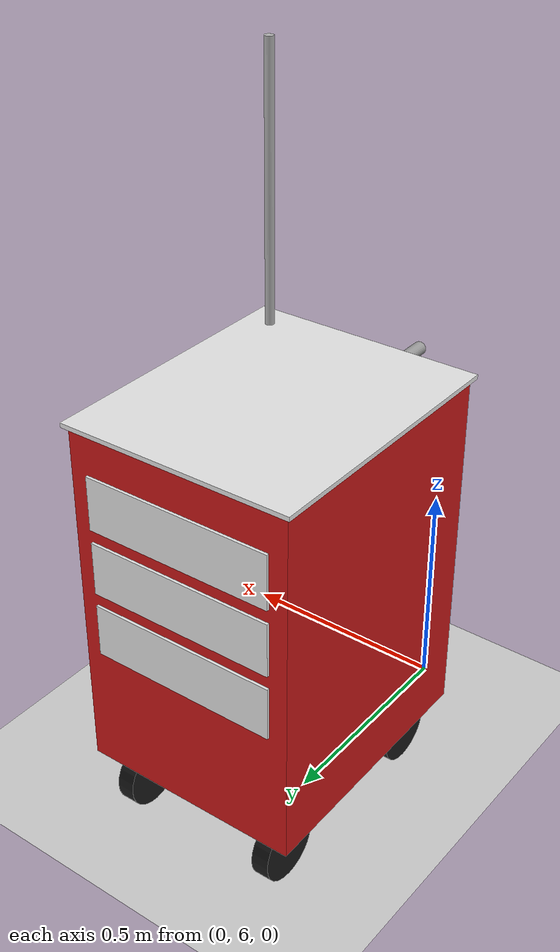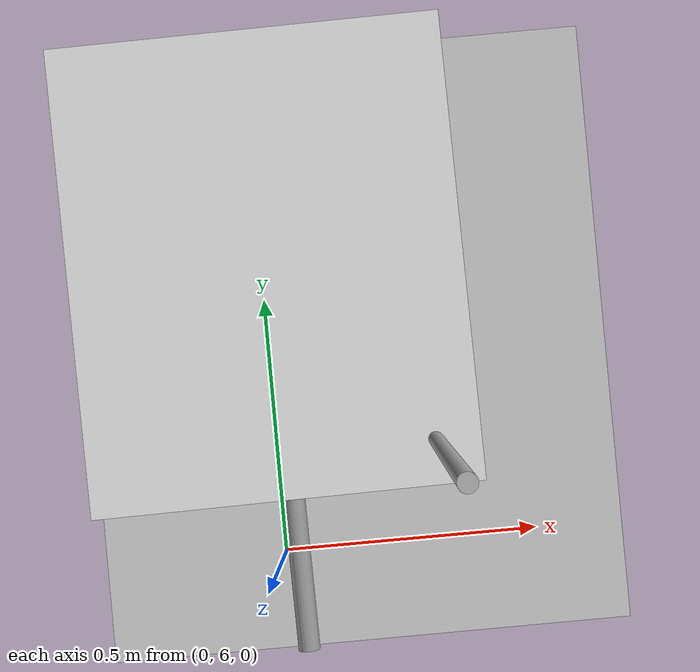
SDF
<sdf version="1.7">
 <world name="default">
  <model name="ground_plane">
   <static>1</static>
   <link name="link">
    <collision name="collision">
     <geometry><plane><normal>0 0 1</normal><size>100 100</size></plane></geometry>
     <surface><friction><ode><mu>100</mu><mu2>50</mu2></ode></friction></surface>
    </collision>
    <visual name="visual">
     <cast_shadows>0</cast_shadows>
     <geometry><plane><normal>0 0 1</normal><size>100 100</size></plane></geometry>
     <material>
      <script><uri>file://media/materials/scripts/gazebo.material</uri><name>Gazebo/Grey</name></script>
     </material>
    </visual>
   </link>
  </model>
  <model name="medical_cart">
   <static>0</static>
   <link name="chassis">
    <pose>0 0 0.55 0 -0 0</pose>
    <inertial>
     <mass>25</mass>
     <inertia><ixx>1.2</ixx><ixy>0</ixy><ixz>0</ixz><iyy>1.2</iyy><iyz>0</iyz><izz>0.8</izz></inertia>
    </inertial>
    <collision name="body_collision"><geometry><box><size>0.6 0.5 0.8</size></box></geometry></collision>
    <visual name="body_visual">
     <geometry><box><size>0.6 0.5 0.8</size></box></geometry>
     <material>
      <ambient>0.8 0.1 0.1 1</ambient>
      <diffuse>0.8 0.1 0.1 1</diffuse>
      <specular>0.5 0.5 0.5 1</specular>
     </material>
    </visual>
    <visual name="top_visual">
     <pose>0 0 0.405 0 -0 0</pose>
     <geometry><box><size>0.62 0.52 0.01</size></box></geometry>
     <material><ambient>0.9 0.9 0.9 1</ambient><diffuse>0.9 0.9 0.9 1</diffuse></material>
    </visual>
    <visual name="drawer_1">
     <pose>0.301 0 0.25 0 -0 0</pose>
     <geometry><box><size>0.01 0.42 0.12</size></box></geometry>
     <material><ambient>0.9 0.9 0.9 1</ambient><diffuse>0.9 0.9 0.9 1</diffuse></material>
    </visual>
    <visual name="drawer_2">
     <pose>0.301 0 0.1 0 -0 0</pose>
     <geometry><box><size>0.01 0.42 0.12</size></box></geometry>
     <material><ambient>0.9 0.9 0.9 1</ambient><diffuse>0.9 0.9 0.9 1</diffuse></material>
    </visual>
    <visual name="drawer_3">
     <pose>0.301 0 -0.05 0 -0 0</pose>
     <geometry><box><size>0.01 0.42 0.12</size></box></geometry>
     <material><ambient>0.9 0.9 0.9 1</ambient><diffuse>0.9 0.9 0.9 1</diffuse></material>
    </visual>
    <collision name="handle_collision">
     <pose>-0.33 0 0.3 0 1.5707 0</pose>
     <geometry><cylinder><radius>0.015</radius><length>0.4</length></cylinder></geometry>
    </collision>
    <visual name="handle_visual">
     <pose>-0.33 0 0.3 0 1.5707 0</pose>
     <geometry><cylinder><radius>0.015</radius><length>0.4</length></cylinder></geometry>
     <material><ambient>0.6 0.6 0.6 1</ambient><diffuse>0.6 0.6 0.6 1</diffuse></material>
    </visual>
    <collision name="iv_pole_collision">
     <pose>-0.25 -0.2 0.7 0 -0 0</pose>
     <geometry><cylinder><radius>0.01</radius><length>0.6</length></cylinder></geometry>
    </collision>
    <visual name="iv_pole_visual">
     <pose>-0.25 -0.2 0.7 0 -0 0</pose>
     <geometry><cylinder><radius>0.01</radius><length>0.6</length></cylinder></geometry>
     <material><ambient>0.7 0.7 0.7 1</ambient><diffuse>0.7 0.7 0.7 1</diffuse></material>
    </visual>
   </link>
   <link name="wheel_fl">
    <pose>0.22 0.18 0.075 -0 1.5707 1.5707</pose>
    <collision name="collision">
     <geometry><cylinder><radius>0.075</radius><length>0.04</length></cylinder></geometry>
     <surface><friction><ode><mu>1</mu><mu2>1</mu2></ode></friction></surface>
    </collision>
    <visual name="visual">
     <geometry><cylinder><radius>0.075</radius><length>0.04</length></cylinder></geometry>
     <material><ambient>0.1 0.1 0.1 1</ambient><diffuse>0.1 0.1 0.1 1</diffuse></material>
    </visual>
    <inertial>
     <inertia><ixx>1</ixx><ixy>0</ixy><ixz>0</ixz><iyy>1</iyy><iyz>0</iyz><izz>1</izz></inertia>
     <mass>1</mass>
    </inertial>
   </link>
   <link name="wheel_fr">
    <pose>0.22 -0.18 0.075 -0 1.5707 1.5707</pose>
    <collision name="collision">
     <geometry><cylinder><radius>0.075</radius><length>0.04</length></cylinder></geometry>
     <surface><friction><ode><mu>1</mu><mu2>1</mu2></ode></friction></surface>
    </collision>
    <visual name="visual">
     <geometry><cylinder><radius>0.075</radius><length>0.04</length></cylinder></geometry>
     <material><ambient>0.1 0.1 0.1 1</ambient><diffuse>0.1 0.1 0.1 1</diffuse></material>
    </visual>
    <inertial>
     <inertia><ixx>1</ixx><ixy>0</ixy><ixz>0</ixz><iyy>1</iyy><iyz>0</iyz><izz>1</izz></inertia>
     <mass>1</mass>
    </inertial>
   </link>
   <link name="wheel_bl">
    <pose>-0.22 0.18 0.075 -0 1.5707 1.5707</pose>
    <collision name="collision">
     <geometry><cylinder><radius>0.075</radius><length>0.04</length></cylinder></geometry>
     <surface><friction><ode><mu>1</mu><mu2>1</mu2></ode></friction></surface>
    </collision>
    <visual name="visual">
     <geometry><cylinder><radius>0.075</radius><length>0.04</length></cylinder></geometry>
     <material><ambient>0.1 0.1 0.1 1</ambient><diffuse>0.1 0.1 0.1 1</diffuse></material>
    </visual>
    <inertial>
     <inertia><ixx>1</ixx><ixy>0</ixy><ixz>0</ixz><iyy>1</iyy><iyz>0</iyz><izz>1</izz></inertia>
     <mass>1</mass>
    </inertial>
   </link>
   <link name="wheel_br">
    <pose>-0.22 -0.18 0.075 -0 1.5707 1.5707</pose>
    <collision name="collision">
     <geometry><cylinder><radius>0.075</radius><length>0.04</length></cylinder></geometry>
     <surface><friction><ode><mu>1</mu><mu2>1</mu2></ode></friction></surface>
    </collision>
    <visual name="visual">
     <geometry><cylinder><radius>0.075</radius><length>0.04</length></cylinder></geometry>
     <material><ambient>0.1 0.1 0.1 1</ambient><diffuse>0.1 0.1 0.1 1</diffuse></material>
    </visual>
    <inertial>
     <inertia><ixx>1</ixx><ixy>0</ixy><ixz>0</ixz><iyy>1</iyy><iyz>0</iyz><izz>1</izz></inertia>
     <mass>1</mass>
    </inertial>
   </link>
   <joint name="joint_fl" type="revolute">
    <parent>chassis</parent>
    <child>wheel_fl</child>
    <axis>
     <xyz>0 0 1</xyz>
     <limit><lower>-1e+16</lower><upper>1e+16</upper></limit>
     <dynamics><spring_reference>0</spring_reference><spring_stiffness>0</spring_stiffness></dynamics>
    </axis>
   </joint>
   <joint name="joint_fr" type="revolute">
    <parent>chassis</parent>
    <child>wheel_fr</child>
    <axis>
     <xyz>0 0 1</xyz>
     <limit><lower>-1e+16</lower><upper>1e+16</upper></limit>
     <dynamics><spring_reference>0</spring_reference><spring_stiffness>0</spring_stiffness></dynamics>
    </axis>
   </joint>
   <joint name="joint_bl" type="revolute">
    <parent>chassis</parent>
    <child>wheel_bl</child>
    <axis>
     <xyz>0 0 1</xyz>
     <limit><lower>-1e+16</lower><upper>1e+16</upper></limit>
     <dynamics><spring_reference>0</spring_reference><spring_stiffness>0</spring_stiffness></dynamics>
    </axis>
   </joint>
   <joint name="joint_br" type="revolute">
    <parent>chassis</parent>
    <child>wheel_br</child>
    <axis>
     <xyz>0 0 1</xyz>
     <limit><lower>-1e+16</lower><upper>1e+16</upper></limit>
     <dynamics><spring_reference>0</spring_reference><spring_stiffness>0</spring_stiffness></dynamics>
    </axis>
   </joint>
   <pose>0.075257 6.50792 2e-06 -3e-06 -1e-06 1.58214</pose>
  </model>
 </world>
</sdf>
